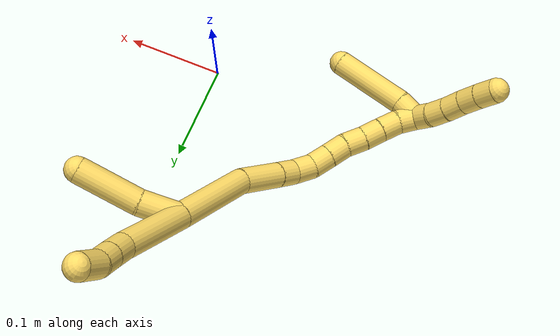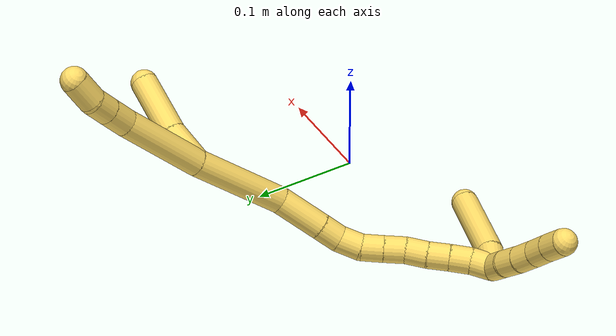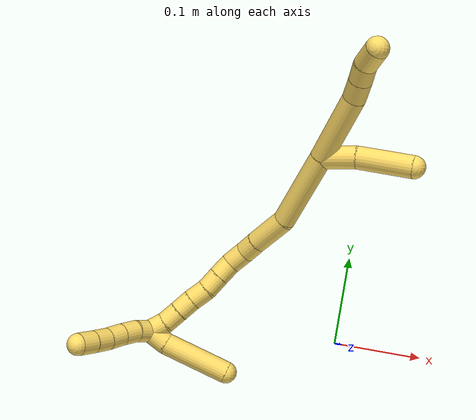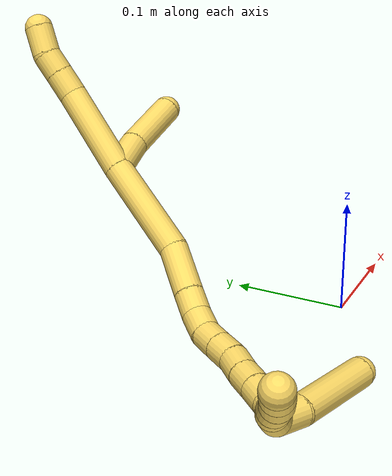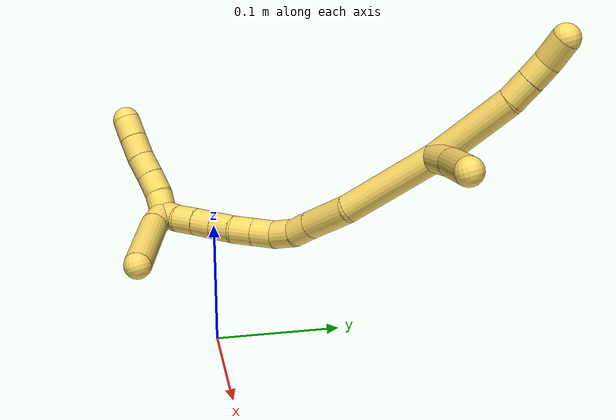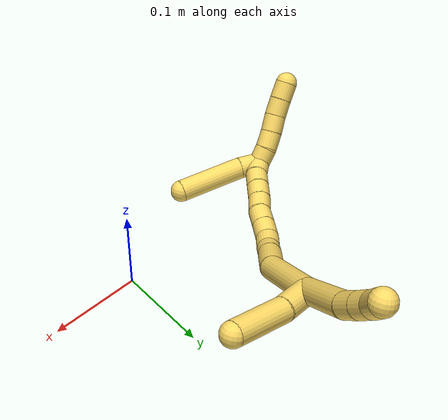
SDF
<sdf version="1.7">
 <world name="default">
  <model name="5">
   <static>0</static>
   <link name="5">
    <collision name="collision-cylinder-e_1_2_8">
     <pose>0.010704 0.036526 0.013528 -1.2161 0.2682 -0.18725</pose>
     <geometry><cylinder><radius>0.0125</radius><length>0.080789</length></cylinder></geometry>
     <surface>
      <friction><ode><mu>1.16</mu><mu2>1.16</mu2><slip1>0</slip1><slip2>0</slip2></ode></friction>
      <contact><ode><kp>1e+06</kp><kd>1</kd><max_vel>0</max_vel><min_depth>0.001</min_depth></ode></contact>
     </surface>
    </collision>
    <visual name="visual-cylinder-e_1_2_8">
     <pose>0.010704 0.036526 0.013528 -1.2161 0.2682 -0.18725</pose>
     <geometry><cylinder><radius>0.0125</radius><length>0.080789</length></cylinder></geometry>
     <material><ambient>1 0.858824 0.4 1</ambient></material>
    </visual>
    <collision name="collision-cylinder-e_2_8_9">
     <pose>0.023304 0.082995 0.032717 -1.05322 0.164167 -0.095584</pose>
     <geometry><cylinder><radius>0.0125</radius><length>0.023198</length></cylinder></geometry>
     <surface>
      <friction><ode><mu>1.16</mu><mu2>1.16</mu2><slip1>0</slip1><slip2>0</slip2></ode></friction>
      <contact><ode><kp>1e+06</kp><kd>1</kd><max_vel>0</max_vel><min_depth>0.001</min_depth></ode></contact>
     </surface>
    </collision>
    <visual name="visual-cylinder-e_2_8_9">
     <pose>0.023304 0.082995 0.032717 -1.05322 0.164167 -0.095584</pose>
     <geometry><cylinder><radius>0.0125</radius><length>0.023198</length></cylinder></geometry>
     <material><ambient>1 0.858824 0.4 1</ambient></material>
    </visual>
    <collision name="collision-cylinder-e_3_9_10">
     <pose>0.026627 0.101453 0.043568 -1.02339 0.142138 -0.079915</pose>
     <geometry><cylinder><radius>0.0125</radius><length>0.020144</length></cylinder></geometry>
     <surface>
      <friction><ode><mu>1.16</mu><mu2>1.16</mu2><slip1>0</slip1><slip2>0</slip2></ode></friction>
      <contact><ode><kp>1e+06</kp><kd>1</kd><max_vel>0</max_vel><min_depth>0.001</min_depth></ode></contact>
     </surface>
    </collision>
    <visual name="visual-cylinder-e_3_9_10">
     <pose>0.026627 0.101453 0.043568 -1.02339 0.142138 -0.079915</pose>
     <geometry><cylinder><radius>0.0125</radius><length>0.020144</length></cylinder></geometry>
     <material><ambient>1 0.858824 0.4 1</ambient></material>
    </visual>
    <collision name="collision-cylinder-e_4_10_6">
     <pose>0.033449 0.119521 0.055606 -0.948909 0.430318 -0.223543</pose>
     <geometry><cylinder><radius>0.0125</radius><length>0.02587</length></cylinder></geometry>
     <surface>
      <friction><ode><mu>1.16</mu><mu2>1.16</mu2><slip1>0</slip1><slip2>0</slip2></ode></friction>
      <contact><ode><kp>1e+06</kp><kd>1</kd><max_vel>0</max_vel><min_depth>0.001</min_depth></ode></contact>
     </surface>
    </collision>
    <visual name="visual-cylinder-e_4_10_6">
     <pose>0.033449 0.119521 0.055606 -0.948909 0.430318 -0.223543</pose>
     <geometry><cylinder><radius>0.0125</radius><length>0.02587</length></cylinder></geometry>
     <material><ambient>1 0.858824 0.4 1</ambient></material>
    </visual>
    <collision name="collision-cylinder-e_1_2_11">
     <pose>0.017562 0.00696 -0.00384 -2.07493 1.14577 -1.65921</pose>
     <geometry><cylinder><radius>0.0125</radius><length>0.038554</length></cylinder></geometry>
     <surface>
      <friction><ode><mu>1.16</mu><mu2>1.16</mu2><slip1>0</slip1><slip2>0</slip2></ode></friction>
      <contact><ode><kp>1e+06</kp><kd>1</kd><max_vel>0</max_vel><min_depth>0.001</min_depth></ode></contact>
     </surface>
    </collision>
    <visual name="visual-cylinder-e_1_2_11">
     <pose>0.017562 0.00696 -0.00384 -2.07493 1.14577 -1.65921</pose>
     <geometry><cylinder><radius>0.0125</radius><length>0.038554</length></cylinder></geometry>
     <material><ambient>1 0.858824 0.4 1</ambient></material>
    </visual>
    <collision name="collision-cylinder-e_2_11_5">
     <pose>0.064793 0.02046 -0.012248 -2.18052 1.30812 -1.94727</pose>
     <geometry><cylinder><radius>0.0125</radius><length>0.061446</length></cylinder></geometry>
     <surface>
      <friction><ode><mu>1.16</mu><mu2>1.16</mu2><slip1>0</slip1><slip2>0</slip2></ode></friction>
      <contact><ode><kp>1e+06</kp><kd>1</kd><max_vel>0</max_vel><min_depth>0.001</min_depth></ode></contact>
     </surface>
    </collision>
    <visual name="visual-cylinder-e_2_11_5">
     <pose>0.064793 0.02046 -0.012248 -2.18052 1.30812 -1.94727</pose>
     <geometry><cylinder><radius>0.0125</radius><length>0.061446</length></cylinder></geometry>
     <material><ambient>1 0.858824 0.4 1</ambient></material>
    </visual>
    <collision name="collision-cylinder-e_1_2_12">
     <pose>-0.011668 -0.04237 -0.010698 1.81811 -0.260916 -0.33376</pose>
     <geometry><cylinder><radius>0.0125</radius><length>0.090462</length></cylinder></geometry>
     <surface>
      <friction><ode><mu>1.16</mu><mu2>1.16</mu2><slip1>0</slip1><slip2>0</slip2></ode></friction>
      <contact><ode><kp>1e+06</kp><kd>1</kd><max_vel>0</max_vel><min_depth>0.001</min_depth></ode></contact>
     </surface>
    </collision>
    <visual name="visual-cylinder-e_1_2_12">
     <pose>-0.011668 -0.04237 -0.010698 1.81811 -0.260916 -0.33376</pose>
     <geometry><cylinder><radius>0.0125</radius><length>0.090462</length></cylinder></geometry>
     <material><ambient>1 0.858824 0.4 1</ambient></material>
    </visual>
    <collision name="collision-cylinder-e_2_12_13">
     <pose>-0.035318 -0.103506 -0.023959 1.7066 -0.564085 -0.641197</pose>
     <geometry><cylinder><radius>0.0125</radius><length>0.044823</length></cylinder></geometry>
     <surface>
      <friction><ode><mu>1.16</mu><mu2>1.16</mu2><slip1>0</slip1><slip2>0</slip2></ode></friction>
      <contact><ode><kp>1e+06</kp><kd>1</kd><max_vel>0</max_vel><min_depth>0.001</min_depth></ode></contact>
     </surface>
    </collision>
    <visual name="visual-cylinder-e_2_12_13">
     <pose>-0.035318 -0.103506 -0.023959 1.7066 -0.564085 -0.641197</pose>
     <geometry><cylinder><radius>0.0125</radius><length>0.044823</length></cylinder></geometry>
     <material><ambient>1 0.858824 0.4 1</ambient></material>
    </visual>
    <collision name="collision-cylinder-e_3_13_14">
     <pose>-0.052667 -0.131094 -0.02803 1.73993 -0.540119 -0.634066</pose>
     <geometry><cylinder><radius>0.0125</radius><length>0.020873</length></cylinder></geometry>
     <surface>
      <friction><ode><mu>1.16</mu><mu2>1.16</mu2><slip1>0</slip1><slip2>0</slip2></ode></friction>
      <contact><ode><kp>1e+06</kp><kd>1</kd><max_vel>0</max_vel><min_depth>0.001</min_depth></ode></contact>
     </surface>
    </collision>
    <visual name="visual-cylinder-e_3_13_14">
     <pose>-0.052667 -0.131094 -0.02803 1.73993 -0.540119 -0.634066</pose>
     <geometry><cylinder><radius>0.0125</radius><length>0.020873</length></cylinder></geometry>
     <material><ambient>1 0.858824 0.4 1</ambient></material>
    </visual>
    <collision name="collision-cylinder-e_4_14_15">
     <pose>-0.063312 -0.149254 -0.028084 1.41641 -0.509408 -0.438773</pose>
     <geometry><cylinder><radius>0.0125</radius><length>0.021646</length></cylinder></geometry>
     <surface>
      <friction><ode><mu>1.16</mu><mu2>1.16</mu2><slip1>0</slip1><slip2>0</slip2></ode></friction>
      <contact><ode><kp>1e+06</kp><kd>1</kd><max_vel>0</max_vel><min_depth>0.001</min_depth></ode></contact>
     </surface>
    </collision>
    <visual name="visual-cylinder-e_4_14_15">
     <pose>-0.063312 -0.149254 -0.028084 1.41641 -0.509408 -0.438773</pose>
     <geometry><cylinder><radius>0.0125</radius><length>0.021646</length></cylinder></geometry>
     <material><ambient>1 0.858824 0.4 1</ambient></material>
    </visual>
    <collision name="collision-cylinder-e_5_15_16">
     <pose>-0.071366 -0.167771 -0.023027 1.1967 -0.274359 -0.187664</pose>
     <geometry><cylinder><radius>0.0125</radius><length>0.020492</length></cylinder></geometry>
     <surface>
      <friction><ode><mu>1.16</mu><mu2>1.16</mu2><slip1>0</slip1><slip2>0</slip2></ode></friction>
      <contact><ode><kp>1e+06</kp><kd>1</kd><max_vel>0</max_vel><min_depth>0.001</min_depth></ode></contact>
     </surface>
    </collision>
    <visual name="visual-cylinder-e_5_15_16">
     <pose>-0.071366 -0.167771 -0.023027 1.1967 -0.274359 -0.187664</pose>
     <geometry><cylinder><radius>0.0125</radius><length>0.020492</length></cylinder></geometry>
     <material><ambient>1 0.858824 0.4 1</ambient></material>
    </visual>
    <collision name="collision-cylinder-e_6_16_17">
     <pose>-0.076749 -0.186159 -0.015774 1.19347 -0.257371 -0.175367</pose>
     <geometry><cylinder><radius>0.0125</radius><length>0.020482</length></cylinder></geometry>
     <surface>
      <friction><ode><mu>1.16</mu><mu2>1.16</mu2><slip1>0</slip1><slip2>0</slip2></ode></friction>
      <contact><ode><kp>1e+06</kp><kd>1</kd><max_vel>0</max_vel><min_depth>0.001</min_depth></ode></contact>
     </surface>
    </collision>
    <visual name="visual-cylinder-e_6_16_17">
     <pose>-0.076749 -0.186159 -0.015774 1.19347 -0.257371 -0.175367</pose>
     <geometry><cylinder><radius>0.0125</radius><length>0.020482</length></cylinder></geometry>
     <material><ambient>1 0.858824 0.4 1</ambient></material>
    </visual>
    <collision name="collision-cylinder-e_7_17_18">
     <pose>-0.083972 -0.203831 -0.008233 1.13982 -0.460024 -0.297892</pose>
     <geometry><cylinder><radius>0.0125</radius><length>0.020794</length></cylinder></geometry>
     <surface>
      <friction><ode><mu>1.16</mu><mu2>1.16</mu2><slip1>0</slip1><slip2>0</slip2></ode></friction>
      <contact><ode><kp>1e+06</kp><kd>1</kd><max_vel>0</max_vel><min_depth>0.001</min_depth></ode></contact>
     </surface>
    </collision>
    <visual name="visual-cylinder-e_7_17_18">
     <pose>-0.083972 -0.203831 -0.008233 1.13982 -0.460024 -0.297892</pose>
     <geometry><cylinder><radius>0.0125</radius><length>0.020794</length></cylinder></geometry>
     <material><ambient>1 0.858824 0.4 1</ambient></material>
    </visual>
    <collision name="collision-cylinder-e_8_18_19">
     <pose>-0.092172 -0.220748 -0.000302 1.12502 -0.36539 -0.231914</pose>
     <geometry><cylinder><radius>0.0125</radius><length>0.020061</length></cylinder></geometry>
     <surface>
      <friction><ode><mu>1.16</mu><mu2>1.16</mu2><slip1>0</slip1><slip2>0</slip2></ode></friction>
      <contact><ode><kp>1e+06</kp><kd>1</kd><max_vel>0</max_vel><min_depth>0.001</min_depth></ode></contact>
     </surface>
    </collision>
    <visual name="visual-cylinder-e_8_18_19">
     <pose>-0.092172 -0.220748 -0.000302 1.12502 -0.36539 -0.231914</pose>
     <geometry><cylinder><radius>0.0125</radius><length>0.020061</length></cylinder></geometry>
     <material><ambient>1 0.858824 0.4 1</ambient></material>
    </visual>
    <collision name="collision-cylinder-e_9_19_20">
     <pose>-0.099554 -0.237798 0.007525 1.15586 -0.384202 -0.252364</pose>
     <geometry><cylinder><radius>0.0125</radius><length>0.020266</length></cylinder></geometry>
     <surface>
      <friction><ode><mu>1.16</mu><mu2>1.16</mu2><slip1>0</slip1><slip2>0</slip2></ode></friction>
      <contact><ode><kp>1e+06</kp><kd>1</kd><max_vel>0</max_vel><min_depth>0.001</min_depth></ode></contact>
     </surface>
    </collision>
    <visual name="visual-cylinder-e_9_19_20">
     <pose>-0.099554 -0.237798 0.007525 1.15586 -0.384202 -0.252364</pose>
     <geometry><cylinder><radius>0.0125</radius><length>0.020266</length></cylinder></geometry>
     <material><ambient>1 0.858824 0.4 1</ambient></material>
    </visual>
    <collision name="collision-cylinder-e_10_20_1">
     <pose>-0.108871 -0.253695 0.015465 1.05359 -0.581378 -0.34455</pose>
     <geometry><cylinder><radius>0.0125</radius><length>0.0201</length></cylinder></geometry>
     <surface>
      <friction><ode><mu>1.16</mu><mu2>1.16</mu2><slip1>0</slip1><slip2>0</slip2></ode></friction>
      <contact><ode><kp>1e+06</kp><kd>1</kd><max_vel>0</max_vel><min_depth>0.001</min_depth></ode></contact>
     </surface>
    </collision>
    <visual name="visual-cylinder-e_10_20_1">
     <pose>-0.108871 -0.253695 0.015465 1.05359 -0.581378 -0.34455</pose>
     <geometry><cylinder><radius>0.0125</radius><length>0.0201</length></cylinder></geometry>
     <material><ambient>1 0.858824 0.4 1</ambient></material>
    </visual>
    <collision name="collision-cylinder-e_1_1_21">
     <pose>-0.117829 -0.26134 0.029001 0.036716 -0.351033 -0.006512</pose>
     <geometry><cylinder><radius>0.0125</radius><length>0.02</length></cylinder></geometry>
     <surface>
      <friction><ode><mu>1.16</mu><mu2>1.16</mu2><slip1>0</slip1><slip2>0</slip2></ode></friction>
      <contact><ode><kp>1e+06</kp><kd>1</kd><max_vel>0</max_vel><min_depth>0.001</min_depth></ode></contact>
     </surface>
    </collision>
    <visual name="visual-cylinder-e_1_1_21">
     <pose>-0.117829 -0.26134 0.029001 0.036716 -0.351033 -0.006512</pose>
     <geometry><cylinder><radius>0.0125</radius><length>0.02</length></cylinder></geometry>
     <material><ambient>1 0.858824 0.4 1</ambient></material>
    </visual>
    <collision name="collision-cylinder-e_2_21_22">
     <pose>-0.12426 -0.263835 0.047682 0.227322 -0.303853 -0.034951</pose>
     <geometry><cylinder><radius>0.0125</radius><length>0.02</length></cylinder></geometry>
     <surface>
      <friction><ode><mu>1.16</mu><mu2>1.16</mu2><slip1>0</slip1><slip2>0</slip2></ode></friction>
      <contact><ode><kp>1e+06</kp><kd>1</kd><max_vel>0</max_vel><min_depth>0.001</min_depth></ode></contact>
     </surface>
    </collision>
    <visual name="visual-cylinder-e_2_21_22">
     <pose>-0.12426 -0.263835 0.047682 0.227322 -0.303853 -0.034951</pose>
     <geometry><cylinder><radius>0.0125</radius><length>0.02</length></cylinder></geometry>
     <material><ambient>1 0.858824 0.4 1</ambient></material>
    </visual>
    <collision name="collision-cylinder-e_3_22_23">
     <pose>-0.129526 -0.268389 0.066415 0.24935 -0.229498 -0.028887</pose>
     <geometry><cylinder><radius>0.0125</radius><length>0.02</length></cylinder></geometry>
     <surface>
      <friction><ode><mu>1.16</mu><mu2>1.16</mu2><slip1>0</slip1><slip2>0</slip2></ode></friction>
      <contact><ode><kp>1e+06</kp><kd>1</kd><max_vel>0</max_vel><min_depth>0.001</min_depth></ode></contact>
     </surface>
    </collision>
    <visual name="visual-cylinder-e_3_22_23">
     <pose>-0.129526 -0.268389 0.066415 0.24935 -0.229498 -0.028887</pose>
     <geometry><cylinder><radius>0.0125</radius><length>0.02</length></cylinder></geometry>
     <material><ambient>1 0.858824 0.4 1</ambient></material>
    </visual>
    <collision name="collision-cylinder-e_4_23_24">
     <pose>-0.134241 -0.272166 0.085451 0.142185 -0.246447 -0.017639</pose>
     <geometry><cylinder><radius>0.0125</radius><length>0.02</length></cylinder></geometry>
     <surface>
      <friction><ode><mu>1.16</mu><mu2>1.16</mu2><slip1>0</slip1><slip2>0</slip2></ode></friction>
      <contact><ode><kp>1e+06</kp><kd>1</kd><max_vel>0</max_vel><min_depth>0.001</min_depth></ode></contact>
     </surface>
    </collision>
    <visual name="visual-cylinder-e_4_23_24">
     <pose>-0.134241 -0.272166 0.085451 0.142185 -0.246447 -0.017639</pose>
     <geometry><cylinder><radius>0.0125</radius><length>0.02</length></cylinder></geometry>
     <material><ambient>1 0.858824 0.4 1</ambient></material>
    </visual>
    <collision name="collision-cylinder-e_5_24_4">
     <pose>-0.139465 -0.274845 0.104567 0.136289 -0.282195 -0.019388</pose>
     <geometry><cylinder><radius>0.0125</radius><length>0.02</length></cylinder></geometry>
     <surface>
      <friction><ode><mu>1.16</mu><mu2>1.16</mu2><slip1>0</slip1><slip2>0</slip2></ode></friction>
      <contact><ode><kp>1e+06</kp><kd>1</kd><max_vel>0</max_vel><min_depth>0.001</min_depth></ode></contact>
     </surface>
    </collision>
    <visual name="visual-cylinder-e_5_24_4">
     <pose>-0.139465 -0.274845 0.104567 0.136289 -0.282195 -0.019388</pose>
     <geometry><cylinder><radius>0.0125</radius><length>0.02</length></cylinder></geometry>
     <material><ambient>1 0.858824 0.4 1</ambient></material>
    </visual>
    <collision name="collision-cylinder-e_1_1_25">
     <pose>-0.103875 -0.264516 0.015667 2.41375 1.10458 2.0344</pose>
     <geometry><cylinder><radius>0.0125</radius><length>0.023543</length></cylinder></geometry>
     <surface>
      <friction><ode><mu>1.16</mu><mu2>1.16</mu2><slip1>0</slip1><slip2>0</slip2></ode></friction>
      <contact><ode><kp>1e+06</kp><kd>1</kd><max_vel>0</max_vel><min_depth>0.001</min_depth></ode></contact>
     </surface>
    </collision>
    <visual name="visual-cylinder-e_1_1_25">
     <pose>-0.103875 -0.264516 0.015667 2.41375 1.10458 2.0344</pose>
     <geometry><cylinder><radius>0.0125</radius><length>0.023543</length></cylinder></geometry>
     <material><ambient>1 0.858824 0.4 1</ambient></material>
    </visual>
    <collision name="collision-cylinder-e_2_25_3">
     <pose>-0.058211 -0.271656 -0.002875 2.89841 1.16663 2.77541</pose>
     <geometry><cylinder><radius>0.0125</radius><length>0.076457</length></cylinder></geometry>
     <surface>
      <friction><ode><mu>1.16</mu><mu2>1.16</mu2><slip1>0</slip1><slip2>0</slip2></ode></friction>
      <contact><ode><kp>1e+06</kp><kd>1</kd><max_vel>0</max_vel><min_depth>0.001</min_depth></ode></contact>
     </surface>
    </collision>
    <visual name="visual-cylinder-e_2_25_3">
     <pose>-0.058211 -0.271656 -0.002875 2.89841 1.16663 2.77541</pose>
     <geometry><cylinder><radius>0.0125</radius><length>0.076457</length></cylinder></geometry>
     <material><ambient>1 0.858824 0.4 1</ambient></material>
    </visual>
    <collision name="collision-sphere-3">
     <pose>-0.023063 -0.275276 -0.017466 0 -0 0</pose>
     <geometry><sphere><radius>0.0125</radius></sphere></geometry>
     <surface>
      <friction><ode><mu>1.16</mu><mu2>1.16</mu2><slip1>0</slip1><slip2>0</slip2></ode></friction>
      <contact><ode><kp>1e+06</kp><kd>1</kd><max_vel>0</max_vel><min_depth>0.001</min_depth></ode></contact>
     </surface>
    </collision>
    <visual name="visual-sphere-3">
     <pose>-0.023063 -0.275276 -0.017466 0 -0 0</pose>
     <geometry><sphere><radius>0.0125</radius></sphere></geometry>
     <material><ambient>1 0.858824 0.4 1</ambient></material>
    </visual>
    <collision name="collision-sphere-25">
     <pose>-0.09336 -0.268036 0.011716 0 -0 0</pose>
     <geometry><sphere><radius>0.0125</radius></sphere></geometry>
     <surface>
      <friction><ode><mu>1.16</mu><mu2>1.16</mu2><slip1>0</slip1><slip2>0</slip2></ode></friction>
      <contact><ode><kp>1e+06</kp><kd>1</kd><max_vel>0</max_vel><min_depth>0.001</min_depth></ode></contact>
     </surface>
    </collision>
    <visual name="visual-sphere-25">
     <pose>-0.09336 -0.268036 0.011716 0 -0 0</pose>
     <geometry><sphere><radius>0.0125</radius></sphere></geometry>
     <material><ambient>1 0.858824 0.4 1</ambient></material>
    </visual>
    <collision name="collision-sphere-4">
     <pose>-0.14225 -0.27615 0.114082 0 -0 0</pose>
     <geometry><sphere><radius>0.0125</radius></sphere></geometry>
     <surface>
      <friction><ode><mu>1.16</mu><mu2>1.16</mu2><slip1>0</slip1><slip2>0</slip2></ode></friction>
      <contact><ode><kp>1e+06</kp><kd>1</kd><max_vel>0</max_vel><min_depth>0.001</min_depth></ode></contact>
     </surface>
    </collision>
    <visual name="visual-sphere-4">
     <pose>-0.14225 -0.27615 0.114082 0 -0 0</pose>
     <geometry><sphere><radius>0.0125</radius></sphere></geometry>
     <material><ambient>1 0.858824 0.4 1</ambient></material>
    </visual>
    <collision name="collision-sphere-24">
     <pose>-0.13668 -0.27354 0.095051 0 -0 0</pose>
     <geometry><sphere><radius>0.0125</radius></sphere></geometry>
     <surface>
      <friction><ode><mu>1.16</mu><mu2>1.16</mu2><slip1>0</slip1><slip2>0</slip2></ode></friction>
      <contact><ode><kp>1e+06</kp><kd>1</kd><max_vel>0</max_vel><min_depth>0.001</min_depth></ode></contact>
     </surface>
    </collision>
    <visual name="visual-sphere-24">
     <pose>-0.13668 -0.27354 0.095051 0 -0 0</pose>
     <geometry><sphere><radius>0.0125</radius></sphere></geometry>
     <material><ambient>1 0.858824 0.4 1</ambient></material>
    </visual>
    <collision name="collision-sphere-23">
     <pose>-0.131801 -0.270792 0.075851 0 -0 0</pose>
     <geometry><sphere><radius>0.0125</radius></sphere></geometry>
     <surface>
      <friction><ode><mu>1.16</mu><mu2>1.16</mu2><slip1>0</slip1><slip2>0</slip2></ode></friction>
      <contact><ode><kp>1e+06</kp><kd>1</kd><max_vel>0</max_vel><min_depth>0.001</min_depth></ode></contact>
     </surface>
    </collision>
    <visual name="visual-sphere-23">
     <pose>-0.131801 -0.270792 0.075851 0 -0 0</pose>
     <geometry><sphere><radius>0.0125</radius></sphere></geometry>
     <material><ambient>1 0.858824 0.4 1</ambient></material>
    </visual>
    <collision name="collision-sphere-22">
     <pose>-0.127251 -0.265986 0.056978 0 -0 0</pose>
     <geometry><sphere><radius>0.0125</radius></sphere></geometry>
     <surface>
      <friction><ode><mu>1.16</mu><mu2>1.16</mu2><slip1>0</slip1><slip2>0</slip2></ode></friction>
      <contact><ode><kp>1e+06</kp><kd>1</kd><max_vel>0</max_vel><min_depth>0.001</min_depth></ode></contact>
     </surface>
    </collision>
    <visual name="visual-sphere-22">
     <pose>-0.127251 -0.265986 0.056978 0 -0 0</pose>
     <geometry><sphere><radius>0.0125</radius></sphere></geometry>
     <material><ambient>1 0.858824 0.4 1</ambient></material>
    </visual>
    <collision name="collision-sphere-21">
     <pose>-0.121268 -0.261685 0.038385 0 -0 0</pose>
     <geometry><sphere><radius>0.0125</radius></sphere></geometry>
     <surface>
      <friction><ode><mu>1.16</mu><mu2>1.16</mu2><slip1>0</slip1><slip2>0</slip2></ode></friction>
      <contact><ode><kp>1e+06</kp><kd>1</kd><max_vel>0</max_vel><min_depth>0.001</min_depth></ode></contact>
     </surface>
    </collision>
    <visual name="visual-sphere-21">
     <pose>-0.121268 -0.261685 0.038385 0 -0 0</pose>
     <geometry><sphere><radius>0.0125</radius></sphere></geometry>
     <material><ambient>1 0.858824 0.4 1</ambient></material>
    </visual>
    <collision name="collision-sphere-1">
     <pose>-0.11439 -0.260996 0.019618 0 -0 0</pose>
     <geometry><sphere><radius>0.0125</radius></sphere></geometry>
     <surface>
      <friction><ode><mu>1.16</mu><mu2>1.16</mu2><slip1>0</slip1><slip2>0</slip2></ode></friction>
      <contact><ode><kp>1e+06</kp><kd>1</kd><max_vel>0</max_vel><min_depth>0.001</min_depth></ode></contact>
     </surface>
    </collision>
    <visual name="visual-sphere-1">
     <pose>-0.11439 -0.260996 0.019618 0 -0 0</pose>
     <geometry><sphere><radius>0.0125</radius></sphere></geometry>
     <material><ambient>1 0.858824 0.4 1</ambient></material>
    </visual>
    <collision name="collision-sphere-11">
     <pose>0.035124 0.01392 -0.007679 0 -0 0</pose>
     <geometry><sphere><radius>0.0125</radius></sphere></geometry>
     <surface>
      <friction><ode><mu>1.16</mu><mu2>1.16</mu2><slip1>0</slip1><slip2>0</slip2></ode></friction>
      <contact><ode><kp>1e+06</kp><kd>1</kd><max_vel>0</max_vel><min_depth>0.001</min_depth></ode></contact>
     </surface>
    </collision>
    <visual name="visual-sphere-11">
     <pose>0.035124 0.01392 -0.007679 0 -0 0</pose>
     <geometry><sphere><radius>0.0125</radius></sphere></geometry>
     <material><ambient>1 0.858824 0.4 1</ambient></material>
    </visual>
    <collision name="collision-sphere-6">
     <pose>0.038845 0.129076 0.062455 0 -0 0</pose>
     <geometry><sphere><radius>0.0125</radius></sphere></geometry>
     <surface>
      <friction><ode><mu>1.16</mu><mu2>1.16</mu2><slip1>0</slip1><slip2>0</slip2></ode></friction>
      <contact><ode><kp>1e+06</kp><kd>1</kd><max_vel>0</max_vel><min_depth>0.001</min_depth></ode></contact>
     </surface>
    </collision>
    <visual name="visual-sphere-6">
     <pose>0.038845 0.129076 0.062455 0 -0 0</pose>
     <geometry><sphere><radius>0.0125</radius></sphere></geometry>
     <material><ambient>1 0.858824 0.4 1</ambient></material>
    </visual>
    <collision name="collision-sphere-10">
     <pose>0.028054 0.109966 0.048758 0 -0 0</pose>
     <geometry><sphere><radius>0.0125</radius></sphere></geometry>
     <surface>
      <friction><ode><mu>1.16</mu><mu2>1.16</mu2><slip1>0</slip1><slip2>0</slip2></ode></friction>
      <contact><ode><kp>1e+06</kp><kd>1</kd><max_vel>0</max_vel><min_depth>0.001</min_depth></ode></contact>
     </surface>
    </collision>
    <visual name="visual-sphere-10">
     <pose>0.028054 0.109966 0.048758 0 -0 0</pose>
     <geometry><sphere><radius>0.0125</radius></sphere></geometry>
     <material><ambient>1 0.858824 0.4 1</ambient></material>
    </visual>
    <collision name="collision-sphere-9">
     <pose>0.0252 0.092939 0.038379 0 -0 0</pose>
     <geometry><sphere><radius>0.0125</radius></sphere></geometry>
     <surface>
      <friction><ode><mu>1.16</mu><mu2>1.16</mu2><slip1>0</slip1><slip2>0</slip2></ode></friction>
      <contact><ode><kp>1e+06</kp><kd>1</kd><max_vel>0</max_vel><min_depth>0.001</min_depth></ode></contact>
     </surface>
    </collision>
    <visual name="visual-sphere-9">
     <pose>0.0252 0.092939 0.038379 0 -0 0</pose>
     <geometry><sphere><radius>0.0125</radius></sphere></geometry>
     <material><ambient>1 0.858824 0.4 1</ambient></material>
    </visual>
    <collision name="collision-sphere-2">
     <geometry><sphere><radius>0.0125</radius></sphere></geometry>
     <surface>
      <friction><ode><mu>1.16</mu><mu2>1.16</mu2><slip1>0</slip1><slip2>0</slip2></ode></friction>
      <contact><ode><kp>1e+06</kp><kd>1</kd><max_vel>0</max_vel><min_depth>0.001</min_depth></ode></contact>
     </surface>
    </collision>
    <visual name="visual-sphere-2">
     <geometry><sphere><radius>0.0125</radius></sphere></geometry>
     <material><ambient>1 0.858824 0.4 1</ambient></material>
    </visual>
    <collision name="collision-sphere-19">
     <pose>-0.095756 -0.229201 0.003738 0 -0 0</pose>
     <geometry><sphere><radius>0.0125</radius></sphere></geometry>
     <surface>
      <friction><ode><mu>1.16</mu><mu2>1.16</mu2><slip1>0</slip1><slip2>0</slip2></ode></friction>
      <contact><ode><kp>1e+06</kp><kd>1</kd><max_vel>0</max_vel><min_depth>0.001</min_depth></ode></contact>
     </surface>
    </collision>
    <visual name="visual-sphere-19">
     <pose>-0.095756 -0.229201 0.003738 0 -0 0</pose>
     <geometry><sphere><radius>0.0125</radius></sphere></geometry>
     <material><ambient>1 0.858824 0.4 1</ambient></material>
    </visual>
    <collision name="collision-sphere-8">
     <pose>0.021409 0.073051 0.027056 0 -0 0</pose>
     <geometry><sphere><radius>0.0125</radius></sphere></geometry>
     <surface>
      <friction><ode><mu>1.16</mu><mu2>1.16</mu2><slip1>0</slip1><slip2>0</slip2></ode></friction>
      <contact><ode><kp>1e+06</kp><kd>1</kd><max_vel>0</max_vel><min_depth>0.001</min_depth></ode></contact>
     </surface>
    </collision>
    <visual name="visual-sphere-8">
     <pose>0.021409 0.073051 0.027056 0 -0 0</pose>
     <geometry><sphere><radius>0.0125</radius></sphere></geometry>
     <material><ambient>1 0.858824 0.4 1</ambient></material>
    </visual>
    <collision name="collision-sphere-5">
     <pose>0.094462 0.027 -0.016816 0 -0 0</pose>
     <geometry><sphere><radius>0.0125</radius></sphere></geometry>
     <surface>
      <friction><ode><mu>1.16</mu><mu2>1.16</mu2><slip1>0</slip1><slip2>0</slip2></ode></friction>
      <contact><ode><kp>1e+06</kp><kd>1</kd><max_vel>0</max_vel><min_depth>0.001</min_depth></ode></contact>
     </surface>
    </collision>
    <visual name="visual-sphere-5">
     <pose>0.094462 0.027 -0.016816 0 -0 0</pose>
     <geometry><sphere><radius>0.0125</radius></sphere></geometry>
     <material><ambient>1 0.858824 0.4 1</ambient></material>
    </visual>
    <collision name="collision-sphere-12">
     <pose>-0.023336 -0.084741 -0.021395 0 -0 0</pose>
     <geometry><sphere><radius>0.0125</radius></sphere></geometry>
     <surface>
      <friction><ode><mu>1.16</mu><mu2>1.16</mu2><slip1>0</slip1><slip2>0</slip2></ode></friction>
      <contact><ode><kp>1e+06</kp><kd>1</kd><max_vel>0</max_vel><min_depth>0.001</min_depth></ode></contact>
     </surface>
    </collision>
    <visual name="visual-sphere-12">
     <pose>-0.023336 -0.084741 -0.021395 0 -0 0</pose>
     <geometry><sphere><radius>0.0125</radius></sphere></geometry>
     <material><ambient>1 0.858824 0.4 1</ambient></material>
    </visual>
    <collision name="collision-sphere-13">
     <pose>-0.0473 -0.122271 -0.026524 0 -0 0</pose>
     <geometry><sphere><radius>0.0125</radius></sphere></geometry>
     <surface>
      <friction><ode><mu>1.16</mu><mu2>1.16</mu2><slip1>0</slip1><slip2>0</slip2></ode></friction>
      <contact><ode><kp>1e+06</kp><kd>1</kd><max_vel>0</max_vel><min_depth>0.001</min_depth></ode></contact>
     </surface>
    </collision>
    <visual name="visual-sphere-13">
     <pose>-0.0473 -0.122271 -0.026524 0 -0 0</pose>
     <geometry><sphere><radius>0.0125</radius></sphere></geometry>
     <material><ambient>1 0.858824 0.4 1</ambient></material>
    </visual>
    <collision name="collision-sphere-14">
     <pose>-0.058034 -0.139917 -0.029537 0 -0 0</pose>
     <geometry><sphere><radius>0.0125</radius></sphere></geometry>
     <surface>
      <friction><ode><mu>1.16</mu><mu2>1.16</mu2><slip1>0</slip1><slip2>0</slip2></ode></friction>
      <contact><ode><kp>1e+06</kp><kd>1</kd><max_vel>0</max_vel><min_depth>0.001</min_depth></ode></contact>
     </surface>
    </collision>
    <visual name="visual-sphere-14">
     <pose>-0.058034 -0.139917 -0.029537 0 -0 0</pose>
     <geometry><sphere><radius>0.0125</radius></sphere></geometry>
     <material><ambient>1 0.858824 0.4 1</ambient></material>
    </visual>
    <collision name="collision-sphere-15">
     <pose>-0.06859 -0.158591 -0.026631 0 -0 0</pose>
     <geometry><sphere><radius>0.0125</radius></sphere></geometry>
     <surface>
      <friction><ode><mu>1.16</mu><mu2>1.16</mu2><slip1>0</slip1><slip2>0</slip2></ode></friction>
      <contact><ode><kp>1e+06</kp><kd>1</kd><max_vel>0</max_vel><min_depth>0.001</min_depth></ode></contact>
     </surface>
    </collision>
    <visual name="visual-sphere-15">
     <pose>-0.06859 -0.158591 -0.026631 0 -0 0</pose>
     <geometry><sphere><radius>0.0125</radius></sphere></geometry>
     <material><ambient>1 0.858824 0.4 1</ambient></material>
    </visual>
    <collision name="collision-sphere-16">
     <pose>-0.074142 -0.176952 -0.019423 0 -0 0</pose>
     <geometry><sphere><radius>0.0125</radius></sphere></geometry>
     <surface>
      <friction><ode><mu>1.16</mu><mu2>1.16</mu2><slip1>0</slip1><slip2>0</slip2></ode></friction>
      <contact><ode><kp>1e+06</kp><kd>1</kd><max_vel>0</max_vel><min_depth>0.001</min_depth></ode></contact>
     </surface>
    </collision>
    <visual name="visual-sphere-16">
     <pose>-0.074142 -0.176952 -0.019423 0 -0 0</pose>
     <geometry><sphere><radius>0.0125</radius></sphere></geometry>
     <material><ambient>1 0.858824 0.4 1</ambient></material>
    </visual>
    <collision name="collision-sphere-17">
     <pose>-0.079356 -0.195366 -0.012125 0 -0 0</pose>
     <geometry><sphere><radius>0.0125</radius></sphere></geometry>
     <surface>
      <friction><ode><mu>1.16</mu><mu2>1.16</mu2><slip1>0</slip1><slip2>0</slip2></ode></friction>
      <contact><ode><kp>1e+06</kp><kd>1</kd><max_vel>0</max_vel><min_depth>0.001</min_depth></ode></contact>
     </surface>
    </collision>
    <visual name="visual-sphere-17">
     <pose>-0.079356 -0.195366 -0.012125 0 -0 0</pose>
     <geometry><sphere><radius>0.0125</radius></sphere></geometry>
     <material><ambient>1 0.858824 0.4 1</ambient></material>
    </visual>
    <collision name="collision-sphere-18">
     <pose>-0.088588 -0.212295 -0.004341 0 -0 0</pose>
     <geometry><sphere><radius>0.0125</radius></sphere></geometry>
     <surface>
      <friction><ode><mu>1.16</mu><mu2>1.16</mu2><slip1>0</slip1><slip2>0</slip2></ode></friction>
      <contact><ode><kp>1e+06</kp><kd>1</kd><max_vel>0</max_vel><min_depth>0.001</min_depth></ode></contact>
     </surface>
    </collision>
    <visual name="visual-sphere-18">
     <pose>-0.088588 -0.212295 -0.004341 0 -0 0</pose>
     <geometry><sphere><radius>0.0125</radius></sphere></geometry>
     <material><ambient>1 0.858824 0.4 1</ambient></material>
    </visual>
    <collision name="collision-sphere-20">
     <pose>-0.103352 -0.246395 0.011312 0 -0 0</pose>
     <geometry><sphere><radius>0.0125</radius></sphere></geometry>
     <surface>
      <friction><ode><mu>1.16</mu><mu2>1.16</mu2><slip1>0</slip1><slip2>0</slip2></ode></friction>
      <contact><ode><kp>1e+06</kp><kd>1</kd><max_vel>0</max_vel><min_depth>0.001</min_depth></ode></contact>
     </surface>
    </collision>
    <visual name="visual-sphere-20">
     <pose>-0.103352 -0.246395 0.011312 0 -0 0</pose>
     <geometry><sphere><radius>0.0125</radius></sphere></geometry>
     <material><ambient>1 0.858824 0.4 1</ambient></material>
    </visual>
    <inertial>
     <pose>-0.037708 -0.110063 0.008447 0 -0 0</pose>
     <mass>0.75</mass>
     <inertia><ixx>8.3e-05</ixx><ixy>0</ixy><ixz>0</ixz><iyy>4.3e-05</iyy><iyz>0</iyz><izz>-1.1e-05</izz></inertia>
    </inertial>
   </link>
   <pose>-0.057109 0.192693 0.121347 0.329477 -0.354539 -0.303642</pose>
  </model>
 </world>
</sdf>
